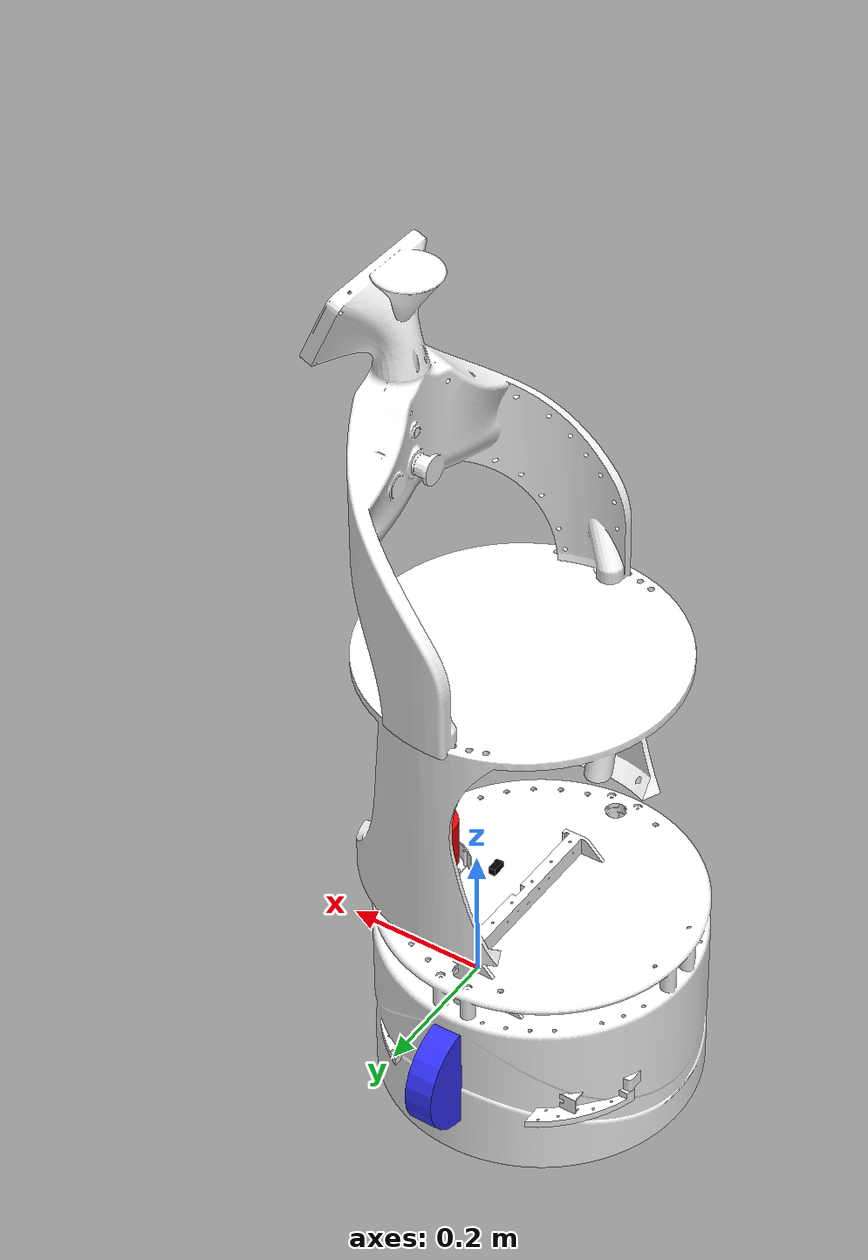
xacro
<?xml version="1.0" ?>
<robot name="robot_sbem" xmlns:xacro="http://www.ros.org/wiki/xacro">

    <xacro:arg name="use_ros2_control" default="true"/>
    <xacro:arg name="sim_mode" default="false"/>

    <xacro:include filename="robot_core.xacro" />

    <xacro:if value="$(arg use_ros2_control)">
            <xacro:include filename="ros2_control.xacro" />
    </xacro:if>

    <xacro:unless value="$(arg use_ros2_control)">
        <xacro:include filename="gazebo_control.xacro" />
    </xacro:unless>

    <xacro:include filename="lidar.xacro" />
    <xacro:include filename="camera.xacro" />

</robot>

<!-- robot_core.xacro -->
<robot name="robot_sbem" xmlns:xacro="http://www.ros.org/wiki/xacro">

<xacro:include filename="materials.xacro" />
<xacro:include filename="inertial_macros.xacro" />

<!-- BASE LINK -->

<link name="base_link">
</link>

<!-- BASE FOOTPRINT LINK -->
<joint name="base_footprint_joint" type="fixed">
    <parent link="base_link"/>
    <child link="base_footprint"/>
    <origin xyz="0 0 0" rpy="0 0 0"/>
</joint>

<link name="base_footprint">
</link>

<!-- BODY LINK -->

<joint name="chassis_joint" type="fixed">
    <parent link="base_link"/>
    <child link="chassis"/>
    <origin xyz="-0.1 0 0"/>
</joint>

<link name="chassis">
    <visual>
        <origin xyz="0.01 -0.04 -0.075"/>
        <geometry>
            <mesh filename="file://$(find robot_sbem)/meshes/cover_frame_1.stl" scale="0.001 0.001 0.001"/>
        </geometry>
        <material name="white"/>
    </visual>
    <collision>
        <origin xyz="0.10 -0.04 -0.075"/>
        <geometry>
            <mesh filename="file://$(find robot_sbem)/meshes/cover_frame_1.stl" scale="0.001 0.001 0.001"/>
        </geometry>
    </collision>
    <inertial>
        <origin xyz="0.01 -0.04 -0.075" rpy="0 0 0"/>
        <mass value="0.476900692892485"/>
        <inertia ixx="1.283383" iyy="1.267627" izz="1.750151" ixy="-0.000192" iyz="-0.005412" ixz="0.001357"/>
      </inertial>

</link>

<gazebo reference="chassis">
    <material>Gazebo/White</material>
</gazebo>

<link name="internal_body">
    <inertial>
      <origin xyz="-0.1 -0.04 -0.078" rpy="0 0 0"/>
      <mass value="0.54535521653018"/>
      <inertia ixx="0.220166" iyy="0.326028" izz="0.379994" ixy="-5.3e-05" iyz="-5e-06" ixz="-0.018753"/>
    </inertial>
    <visual>
        <origin xyz="-0.1 -0.04 -0.078"/>
      <geometry>
        <mesh filename="file://$(find robot_sbem)/meshes/base_link.stl" scale="0.001 0.001 0.001"/>
      </geometry>
      <material name="white"/>
    </visual>
    <collision>
        <origin xyz="-0.1 -0.04 -0.078"/>
      <geometry>
        <mesh filename="file://$(find robot_sbem)/meshes/base_link.stl" scale="0.001 0.001 0.001"/>
      </geometry>
    </collision>
  </link>

  <joint name="internal_body_joint" type="fixed">
    <origin xyz="0 0 0" rpy="0 0 0"/>
    <parent link="base_link"/>
    <child link="internal_body"/>
  </joint>

  <gazebo reference="internal_body">
        <material>Gazebo/Blue</material>
        <mu1>0.2</mu1>
        <mu2>0.2</mu2>
    </gazebo>

<!-- LEFT WHEEL LINK -->

<joint name="left_wheel_joint" type="continuous">
    <parent link="base_link"/>
    <child link="left_wheel"/>
    <origin xyz="-0.075 0.175 0" rpy="0 ${pi/2} 0" />
    <axis xyz="0 1 0"/>
</joint>

<link name="left_wheel">
    <visual>
        <geometry>
            <cylinder radius="0.08" length="0.04"/>
        </geometry>
        <material name="blue"/>
    </visual>
    <collision>
        <geometry>
          <cylinder radius="0.08" length="0.04"/>
        </geometry>
    </collision>
    <xacro:inertial_cylinder mass="1" length="0.04" radius="0.08">
        <origin xyz="0 0 0" rpy="0 0 0"/>
    </xacro:inertial_cylinder>
</link>

<gazebo reference="left_wheel">
    <material>Gazebo/Blue</material>
</gazebo>

<!-- RIGHT WHEEL LINK -->
<joint name="right_wheel_joint" type="continuous">
    <parent link="base_link"/>
    <child link="right_wheel"/>
    <origin xyz="-0.075 -0.175 0" rpy="0 ${pi/2} 0" />
    <axis xyz="0 1 0"/>
</joint>

<link name="right_wheel">
    <visual>
        <geometry>
          <cylinder radius="0.08" length="0.04"/>
        </geometry>
        <material name="blue"/>
    </visual>
    <collision>
        <geometry>
          <cylinder radius="0.08" length="0.04"/>
        </geometry>
    </collision>
    <xacro:inertial_cylinder mass="1" length="0.04" radius="0.08">
        <origin xyz="0 0 0" rpy="0 0 0"/>
    </xacro:inertial_cylinder>
</link>

<gazebo reference="right_wheel">
    <material>Gazebo/Blue</material>
</gazebo>

<!-- CASTER WHEEL LINK -->

<joint name="caster_wheel_joint_1" type="fixed">
    <parent link="chassis"/>
    <child link="caster_wheel_1"/>
    <origin xyz="0.14 0 -0.030"/>
</joint>

<link name="caster_wheel_1">
    <visual>
        <geometry>
            <sphere radius="0.05"/>
        </geometry>
        <material name="black"/>
    </visual>
    <collision>
        <geometry>
            <sphere radius="0.05"/>
        </geometry>
    </collision>
    <xacro:inertial_sphere mass="0.1" radius="0.05">
        <origin xyz="0 0 0" rpy="0 0 0"/>
    </xacro:inertial_sphere>
</link>

<gazebo reference="caster_wheel_1">
    <material>Gazebo/White</material>
    <mu1 value="0.001"/>
    <mu2 value="0.001"/>
</gazebo>

<joint name="caster_wheel_joint_2" type="fixed">
    <parent link="chassis"/>
    <child link="caster_wheel_2"/>
    <origin xyz="-0.1 0 -0.030"/>
</joint>

<link name="caster_wheel_2">
    <visual>
        <geometry>
            <sphere radius="0.05"/>
        </geometry>
        <material name="black"/>
    </visual>
    <collision>
        <geometry>
            <sphere radius="0.05"/>
        </geometry>
    </collision>
    <xacro:inertial_sphere mass="0.1" radius="0.08">
        <origin xyz="0 0 0" rpy="0 0 0"/>
    </xacro:inertial_sphere>
</link>

<gazebo reference="caster_wheel_2">
    <material>Gazebo/White</material>
    <mu1 value="0.001"/>
    <mu2 value="0.001"/>
</gazebo>

<link name="central_body">
    <inertial>
      <origin xyz="0.0 -0.05 -0.48" rpy="0 0 0"/>
      <mass value="0.460328263120194"/>
      <inertia ixx="0.905366" iyy="0.541365" izz="0.75836" ixy="-5.7e-05" iyz="-0.000152" ixz="0.05854"/>
    </inertial>
    <visual>
      <origin xyz="0.0 -0.05 -0.48" rpy="0 0 0"/>
      <geometry>
        <mesh filename="file://$(find robot_sbem)/meshes/central_body_1.stl" scale="0.001 0.001 0.001"/>
      </geometry>
      <material name="white"/>
    </visual>
    <collision>
      <origin xyz="0.0 -0.05 -0.48" rpy="0 0 0"/>
      <geometry>
        <mesh filename="file://$(find robot_sbem)/meshes/central_body_1.stl" scale="0.001 0.001 0.001"/>
      </geometry>
    </collision>
  </link>

  <joint name="joint_cover_base" type="fixed">
    <origin xyz="0.020 0 0.405" rpy="0 0 0"/>
    <parent link="chassis"/>
    <child link="central_body"/>
  </joint>

  <gazebo reference="central_body">
    <material>Gazebo/White</material>
    <mu1>0.2</mu1>
    <mu2>0.2</mu2>
  </gazebo>

  <link name="upper_body">
    <inertial>
      <origin xyz="-0.012447 -0.042954 -0.658" rpy="0 0 0"/>
      <mass value="0.509819302869698"/>
      <inertia ixx="0.505323" iyy="0.34562" izz="0.302736" ixy="-0.000304" iyz="-0.001097" ixz="-0.112705"/>
    </inertial>
    <visual>
      <origin xyz="-0.012447 -0.042954 -0.658" rpy="0 0 0"/>
      <geometry>
        <mesh filename="file://$(find robot_sbem)/meshes/upper_body_1.stl" scale="0.001 0.001 0.001"/>
      </geometry>
      <material name="white"/>
    </visual>
    <collision>
      <origin xyz="-0.012447 -0.042954 -0.658" rpy="0 0 0"/>
      <geometry>
        <mesh filename="file://$(find robot_sbem)/meshes/upper_body_1.stl" scale="0.001 0.001 0.001"/>
      </geometry>
    </collision>
  </link>

  <joint name="joint_upper_body" type="fixed">
    <origin xyz="0.0 0.0 0.171" rpy="0 0 0"/>
    <parent link="central_body"/>
    <child link="upper_body"/>
  </joint>

  <gazebo reference="upper_body">
    <material>Gazebo/White</material>
    <mu1>0.2</mu1>
    <mu2>0.2</mu2>
  </gazebo>

<!-- IMU SECTION-->

<joint name="imu_joint" type="fixed">
    <parent link="base_link"/>
    <child link="imu"/>
    <origin xyz="-0.03 0 0.2"/>
</joint>

<link name="imu">
    <visual>
        <geometry>
            <box size="0.01 0.02 0.01"/>
        </geometry>
        <material name="black"/>
    </visual>
    <collision>
        <geometry>
            <box size="0.01 0.02 0.01"/>
        </geometry>
    </collision>
    <xacro:inertial_box mass="0.001" x="0.30" y="0.27" z="0.12">
        <origin xyz="0 0 0" rpy="0 0 0"/>
    </xacro:inertial_box>
</link>

<gazebo reference="imu">
    <material>Gazebo/White</material>
</gazebo>

</robot>

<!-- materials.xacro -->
<robot name="robot_sbem" xmlns:xacro="http://www.ros.org/wiki/xacro" >

  <material name="white">
    <color rgba="1 1 1 1" />
  </material>

  <material name="orange">
      <color rgba="1 0.3 0.1 1"/>
  </material>

  <material name="blue">
      <color rgba="0.2 0.2 1 1"/>
  </material>

  <material name="black">
      <color rgba="0 0 0 1"/>
  </material>

  <material name="red">
    <color rgba="1 0 0 1"/>
</material>

</robot>

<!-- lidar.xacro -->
<robot name="robot_sbem" xmlns:xacro="http://www.ros.org/wiki/xacro">

    <joint name="laser_joint" type = "fixed">
        <parent link="chassis"/>
        <child link="laser_frame"/>
        <origin xyz="0.17 0.0 0.20 " rpy="0.0 0 -${pi}"/> <!-- 0.0 0 -${pi}-->

    </joint>

    <link name="laser_frame">
        <visual>
            <geometry>
                <cylinder radius="0.035" length="0.07"/>
            </geometry>
            <material name="red"/>
        </visual>
        <collision>
            <geometry>
              <cylinder radius="0.035" length="0.07"/>
            </geometry>
        </collision>
        <xacro:inertial_cylinder mass="0.1" length="0.07" radius="0.035">
            <origin xyz="0 0 0" rpy="0 0 0"/>
        </xacro:inertial_cylinder>
    </link>

    <gazebo reference="laser_frame">
        <material>Gazebo/Red</material>

        <sensor name="laser" type="ray">
            <pose> 0 0 0 0 0 0 </pose>
            <visualize>true</visualize>
            <update_rate>10</update_rate>
            <ray>
                <scan>
                    <horizontal>
                        <samples>360</samples>
                        <min_angle>-3.14</min_angle>
                        <max_angle>3.14</max_angle>
                    </horizontal>
                </scan>
                <range>
                    <min>0.1</min>
                    <max>12</max>
                </range>
            </ray>
            <plugin name="laser_controller" filename="libgazebo_ros_ray_sensor.so">
                <ros>
                    <argument>~/out:=scan</argument>
                </ros>
                <output_type>sensor_msgs/LaserScan</output_type>
                <frame_name>laser_frame</frame_name>
            </plugin>
        </sensor>
    </gazebo>

</robot>

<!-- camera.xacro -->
<robot name="robot_sbem" xmlns:xacro="http://www.ros.org/wiki/xacro">

    <joint name="camera_joint" type = "fixed">
        <parent link="chassis"/>
        <child link="camera0_link"/>
        <origin xyz="0.23 0.0 0.225" rpy="0.0 0 0"/> <!-- 0.0 0 -${pi}-->
    </joint>

    <link name="camera0_link">
        <visual>
            <geometry>
                <box size="0.010 0.03 0.03" />
            </geometry>
            <material name="red"/>
        </visual>
    </link>

    <joint name="camera_optical_joint" type = "fixed">
        <parent link="camera0_link"/>
        <child link="camera_link_optical"/>
        <origin xyz="0 0.0 0" rpy="${-pi/2} 0 ${-pi/2}"/> <!-- 0.0 0 -${pi}-->
    </joint>

    <link name="camera_link_optical">
    </link>

    <gazebo reference="camera0_link">
        <material>Gazebo/Red</material>

        <sensor name="camera" type="camera">
            <pose> 0 0 0 0 0 0 </pose>
            <visualize>true</visualize>
            <update_rate>10</update_rate>
            <camera>
                <horizontal_fov>1.089</horizontal_fov>
                <image>
                    <format>R8G8B8</format>
                    <width>640</width>
                    <height>480</height>
                </image>
                <distortion>
                    <k1>-3.88181994e-01</k1>
                    <k2>-2.24390023e-01</k2>
                    <k3> 2.94297314e-04</k3>
                    <p1>2.20218685e-03</p1>
                    <p2>9.44258171e-01</p2>
                    <center>0.5 0.5</center>
                  </distortion>
            </camera>
            <plugin name="camera_controller" filename="libgazebo_ros_camera.so">
                <frame_name>camera_link_optical</frame_name>
            </plugin>
        </sensor>
    </gazebo>
</robot>
